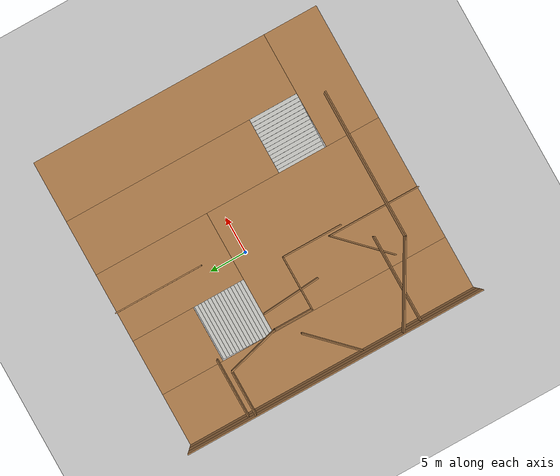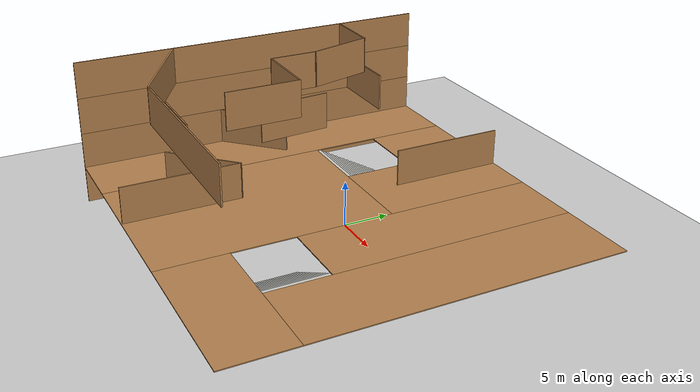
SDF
<sdf version="1.7">
 <world name="default">
  <model name="ground_plane">
   <static>1</static>
   <link name="link">
    <collision name="collision">
     <geometry><plane><normal>0 0 1</normal><size>100 100</size></plane></geometry>
     <surface>
      <contact><collide_bitmask>65535</collide_bitmask></contact>
      <friction><ode><mu>100</mu><mu2>50</mu2></ode></friction>
     </surface>
    </collision>
    <visual name="visual">
     <cast_shadows>0</cast_shadows>
     <geometry><plane><normal>0 0 1</normal><size>100 100</size></plane></geometry>
     <material>
      <script><uri>file://media/materials/scripts/gazebo.material</uri><name>Gazebo/Grey</name></script>
     </material>
    </visual>
   </link>
  </model>
  <model name="building_4F">
   <pose>2.42906 -2.56558 0 0 -0 0</pose>
   <link name="Floor_1">
    <pose>-1e-06 0 4 0 -0 0</pose>
    <visual name="Floor_1_Visual_0">
     <pose>-16.4507 0 0.05 0 -0 0</pose>
     <geometry><box><size>7.27973 40.15 0.1</size></box></geometry>
     <material>
      <script><uri>file://media/materials/scripts/gazebo.material</uri><name>Gazebo/Wood</name></script>
      <ambient>1 1 1 1</ambient>
     </material>
     <meta><layer>1</layer></meta>
    </visual>
    <collision name="Floor_1_Collision_0">
     <geometry><box><size>7.27973 40.15 0.1</size></box></geometry>
     <pose>-16.4507 0 0.05 0 -0 0</pose>
    </collision>
    <visual name="Floor_1_Visual_1">
     <pose>-4.31817 -7.86458 0.05 0 -0 0</pose>
     <geometry><box><size>16.9853 24.4208 0.1</size></box></geometry>
     <material>
      <script><uri>file://media/materials/scripts/gazebo.material</uri><name>Gazebo/Wood</name></script>
      <ambient>1 1 1 1</ambient>
     </material>
     <meta><layer>1</layer></meta>
    </visual>
    <collision name="Floor_1_Collision_1">
     <geometry><box><size>16.9853 24.4208 0.1</size></box></geometry>
     <pose>-4.31817 -7.86458 0.05 0 -0 0</pose>
    </collision>
    <visual name="Floor_1_Visual_2">
     <pose>12.1325 -16.3581 0.05 0 -0 0</pose>
     <geometry><box><size>15.9161 7.43388 0.1</size></box></geometry>
     <material>
      <script><uri>file://media/materials/scripts/gazebo.material</uri><name>Gazebo/Wood</name></script>
      <ambient>1 1 1 1</ambient>
     </material>
     <meta><layer>1</layer></meta>
    </visual>
    <collision name="Floor_1_Collision_2">
     <geometry><box><size>15.9161 7.43388 0.1</size></box></geometry>
     <pose>12.1325 -16.3581 0.05 0 -0 0</pose>
    </collision>
    <visual name="Floor_1_Visual_3">
     <pose>15.9125 3.71694 0.05 0 -0 0</pose>
     <geometry><box><size>8.35607 32.7161 0.1</size></box></geometry>
     <material>
      <script><uri>file://media/materials/scripts/gazebo.material</uri><name>Gazebo/Wood</name></script>
      <ambient>1 1 1 1</ambient>
     </material>
     <meta><layer>1</layer></meta>
    </visual>
    <collision name="Floor_1_Collision_3">
     <geometry><box><size>8.35607 32.7161 0.1</size></box></geometry>
     <pose>15.9125 3.71694 0.05 0 -0 0</pose>
    </collision>
    <visual name="Floor_1_Visual_4">
     <pose>7.95446 7.07694 0.05 0 -0 0</pose>
     <geometry><box><size>7.56 25.9961 0.1</size></box></geometry>
     <material>
      <script><uri>file://media/materials/scripts/gazebo.material</uri><name>Gazebo/Wood</name></script>
      <ambient>1 1 1 1</ambient>
     </material>
     <meta><layer>1</layer></meta>
    </visual>
    <collision name="Floor_1_Collision_4">
     <geometry><box><size>7.56 25.9961 0.1</size></box></geometry>
     <pose>7.95446 7.07694 0.05 0 -0 0</pose>
    </collision>
    <visual name="Floor_1_Visual_5">
     <pose>-0.523168 12.2104 0.05 0 -0 0</pose>
     <geometry><box><size>9.39526 15.7292 0.1</size></box></geometry>
     <material>
      <script><uri>file://media/materials/scripts/gazebo.material</uri><name>Gazebo/Wood</name></script>
      <ambient>1 1 1 1</ambient>
     </material>
     <meta><layer>1</layer></meta>
    </visual>
    <collision name="Floor_1_Collision_5">
     <geometry><box><size>9.39526 15.7292 0.1</size></box></geometry>
     <pose>-0.523168 12.2104 0.05 0 -0 0</pose>
    </collision>
    <visual name="Floor_1_Visual_6">
     <pose>-9.0158 15.7804 0.05 0 -0 0</pose>
     <geometry><box><size>7.59 8.58916 0.1</size></box></geometry>
     <material>
      <script><uri>file://media/materials/scripts/gazebo.material</uri><name>Gazebo/Wood</name></script>
      <ambient>1 1 1 1</ambient>
     </material>
     <meta><layer>1</layer></meta>
    </visual>
    <collision name="Floor_1_Collision_6">
     <geometry><box><size>7.59 8.58916 0.1</size></box></geometry>
     <pose>-9.0158 15.7804 0.05 0 -0 0</pose>
    </collision>
   </link>
   <link name="Stairs_0">
    <visual name="Stairs_0_Visual_0">
     <pose>-9.0158 11.2478 0.133333 0 -0 0</pose>
     <geometry><box><size>7.59 0.476 0.266667</size></box></geometry>
     <material>
      <script><uri>file://media/materials/scripts/gazebo.material</uri><name>Gazebo/CeilingTiled</name></script>
      <ambient>1 1 1 1</ambient>
     </material>
     <meta><layer>0</layer></meta>
    </visual>
    <collision name="Stairs_0_Collision_0">
     <geometry><box><size>7.59 0.476 0.266667</size></box></geometry>
     <pose>-9.0158 11.2478 0.133333 0 -0 0</pose>
    </collision>
    <visual name="Stairs_0_Visual_1">
     <pose>-9.0158 10.7718 0.4 0 -0 0</pose>
     <geometry><box><size>7.59 0.476 0.266667</size></box></geometry>
     <material>
      <script><uri>file://media/materials/scripts/gazebo.material</uri><name>Gazebo/CeilingTiled</name></script>
      <ambient>1 1 1 1</ambient>
     </material>
     <meta><layer>0</layer></meta>
    </visual>
    <collision name="Stairs_0_Collision_1">
     <geometry><box><size>7.59 0.476 0.266667</size></box></geometry>
     <pose>-9.0158 10.7718 0.4 0 -0 0</pose>
    </collision>
    <visual name="Stairs_0_Visual_2">
     <pose>-9.0158 10.2958 0.666667 0 -0 0</pose>
     <geometry><box><size>7.59 0.476 0.266667</size></box></geometry>
     <material>
      <script><uri>file://media/materials/scripts/gazebo.material</uri><name>Gazebo/CeilingTiled</name></script>
      <ambient>1 1 1 1</ambient>
     </material>
     <meta><layer>0</layer></meta>
    </visual>
    <collision name="Stairs_0_Collision_2">
     <geometry><box><size>7.59 0.476 0.266667</size></box></geometry>
     <pose>-9.0158 10.2958 0.666667 0 -0 0</pose>
    </collision>
    <visual name="Stairs_0_Visual_3">
     <pose>-9.0158 9.81984 0.933333 0 -0 0</pose>
     <geometry><box><size>7.59 0.476 0.266667</size></box></geometry>
     <material>
      <script><uri>file://media/materials/scripts/gazebo.material</uri><name>Gazebo/CeilingTiled</name></script>
      <ambient>1 1 1 1</ambient>
     </material>
     <meta><layer>0</layer></meta>
    </visual>
    <collision name="Stairs_0_Collision_3">
     <geometry><box><size>7.59 0.476 0.266667</size></box></geometry>
     <pose>-9.0158 9.81984 0.933333 0 -0 0</pose>
    </collision>
    <visual name="Stairs_0_Visual_4">
     <pose>-9.0158 9.34384 1.2 0 -0 0</pose>
     <geometry><box><size>7.59 0.476 0.266667</size></box></geometry>
     <material>
      <script><uri>file://media/materials/scripts/gazebo.material</uri><name>Gazebo/CeilingTiled</name></script>
      <ambient>1 1 1 1</ambient>
     </material>
     <meta><layer>0</layer></meta>
    </visual>
    <collision name="Stairs_0_Collision_4">
     <geometry><box><size>7.59 0.476 0.266667</size></box></geometry>
     <pose>-9.0158 9.34384 1.2 0 -0 0</pose>
    </collision>
    <visual name="Stairs_0_Visual_5">
     <pose>-9.0158 8.86784 1.46667 0 -0 0</pose>
     <geometry><box><size>7.59 0.476 0.266667</size></box></geometry>
     <material>
      <script><uri>file://media/materials/scripts/gazebo.material</uri><name>Gazebo/CeilingTiled</name></script>
      <ambient>1 1 1 1</ambient>
     </material>
     <meta><layer>0</layer></meta>
    </visual>
    <collision name="Stairs_0_Collision_5">
     <geometry><box><size>7.59 0.476 0.266667</size></box></geometry>
     <pose>-9.0158 8.86784 1.46667 0 -0 0</pose>
    </collision>
    <visual name="Stairs_0_Visual_6">
     <pose>-9.0158 8.39184 1.73333 0 -0 0</pose>
     <geometry><box><size>7.59 0.476 0.266667</size></box></geometry>
     <material>
      <script><uri>file://media/materials/scripts/gazebo.material</uri><name>Gazebo/CeilingTiled</name></script>
      <ambient>1 1 1 1</ambient>
     </material>
     <meta><layer>0</layer></meta>
    </visual>
    <collision name="Stairs_0_Collision_6">
     <geometry><box><size>7.59 0.476 0.266667</size></box></geometry>
     <pose>-9.0158 8.39184 1.73333 0 -0 0</pose>
    </collision>
    <visual name="Stairs_0_Visual_7">
     <pose>-9.0158 7.91584 2 0 -0 0</pose>
     <geometry><box><size>7.59 0.476 0.266667</size></box></geometry>
     <material>
      <script><uri>file://media/materials/scripts/gazebo.material</uri><name>Gazebo/CeilingTiled</name></script>
      <ambient>1 1 1 1</ambient>
     </material>
     <meta><layer>0</layer></meta>
    </visual>
    <collision name="Stairs_0_Collision_7">
     <geometry><box><size>7.59 0.476 0.266667</size></box></geometry>
     <pose>-9.0158 7.91584 2 0 -0 0</pose>
    </collision>
    <visual name="Stairs_0_Visual_8">
     <pose>-9.0158 7.43984 2.26667 0 -0 0</pose>
     <geometry><box><size>7.59 0.476 0.266667</size></box></geometry>
     <material>
      <script><uri>file://media/materials/scripts/gazebo.material</uri><name>Gazebo/CeilingTiled</name></script>
      <ambient>1 1 1 1</ambient>
     </material>
     <meta><layer>0</layer></meta>
    </visual>
    <collision name="Stairs_0_Collision_8">
     <geometry><box><size>7.59 0.476 0.266667</size></box></geometry>
     <pose>-9.0158 7.43984 2.26667 0 -0 0</pose>
    </collision>
    <visual name="Stairs_0_Visual_9">
     <pose>-9.0158 6.96384 2.53333 0 -0 0</pose>
     <geometry><box><size>7.59 0.476 0.266667</size></box></geometry>
     <material>
      <script><uri>file://media/materials/scripts/gazebo.material</uri><name>Gazebo/CeilingTiled</name></script>
      <ambient>1 1 1 1</ambient>
     </material>
     <meta><layer>0</layer></meta>
    </visual>
    <collision name="Stairs_0_Collision_9">
     <geometry><box><size>7.59 0.476 0.266667</size></box></geometry>
     <pose>-9.0158 6.96384 2.53333 0 -0 0</pose>
    </collision>
    <visual name="Stairs_0_Visual_10">
     <pose>-9.0158 6.48784 2.8 0 -0 0</pose>
     <geometry><box><size>7.59 0.476 0.266667</size></box></geometry>
     <material>
      <script><uri>file://media/materials/scripts/gazebo.material</uri><name>Gazebo/CeilingTiled</name></script>
      <ambient>1 1 1 1</ambient>
     </material>
     <meta><layer>0</layer></meta>
    </visual>
    <collision name="Stairs_0_Collision_10">
     <geometry><box><size>7.59 0.476 0.266667</size></box></geometry>
     <pose>-9.0158 6.48784 2.8 0 -0 0</pose>
    </collision>
    <visual name="Stairs_0_Visual_11">
     <pose>-9.0158 6.01184 3.06667 0 -0 0</pose>
     <geometry><box><size>7.59 0.476 0.266667</size></box></geometry>
     <material>
      <script><uri>file://media/materials/scripts/gazebo.material</uri><name>Gazebo/CeilingTiled</name></script>
      <ambient>1 1 1 1</ambient>
     </material>
     <meta><layer>0</layer></meta>
    </visual>
    <collision name="Stairs_0_Collision_11">
     <geometry><box><size>7.59 0.476 0.266667</size></box></geometry>
     <pose>-9.0158 6.01184 3.06667 0 -0 0</pose>
    </collision>
    <visual name="Stairs_0_Visual_12">
     <pose>-9.0158 5.53584 3.33333 0 -0 0</pose>
     <geometry><box><size>7.59 0.476 0.266667</size></box></geometry>
     <material>
      <script><uri>file://media/materials/scripts/gazebo.material</uri><name>Gazebo/CeilingTiled</name></script>
      <ambient>1 1 1 1</ambient>
     </material>
     <meta><layer>0</layer></meta>
    </visual>
    <collision name="Stairs_0_Collision_12">
     <geometry><box><size>7.59 0.476 0.266667</size></box></geometry>
     <pose>-9.0158 5.53584 3.33333 0 -0 0</pose>
    </collision>
    <visual name="Stairs_0_Visual_13">
     <pose>-9.0158 5.05984 3.6 0 -0 0</pose>
     <geometry><box><size>7.59 0.476 0.266667</size></box></geometry>
     <material>
      <script><uri>file://media/materials/scripts/gazebo.material</uri><name>Gazebo/CeilingTiled</name></script>
      <ambient>1 1 1 1</ambient>
     </material>
     <meta><layer>0</layer></meta>
    </visual>
    <collision name="Stairs_0_Collision_13">
     <geometry><box><size>7.59 0.476 0.266667</size></box></geometry>
     <pose>-9.0158 5.05984 3.6 0 -0 0</pose>
    </collision>
    <visual name="Stairs_0_Visual_14">
     <pose>-9.0158 4.58384 3.86667 0 -0 0</pose>
     <geometry><box><size>7.59 0.476 0.266667</size></box></geometry>
     <material>
      <script><uri>file://media/materials/scripts/gazebo.material</uri><name>Gazebo/CeilingTiled</name></script>
      <ambient>1 1 1 1</ambient>
     </material>
     <meta><layer>0</layer></meta>
    </visual>
    <collision name="Stairs_0_Collision_14">
     <geometry><box><size>7.59 0.476 0.266667</size></box></geometry>
     <pose>-9.0158 4.58384 3.86667 0 -0 0</pose>
    </collision>
   </link>
   <link name="Stairs_1">
    <visual name="Stairs_1_Visual_0">
     <pose>4.42646 -9.28112 0.133333 0 -0 1.5708</pose>
     <geometry><box><size>6.72 0.504 0.266667</size></box></geometry>
     <material>
      <script><uri>file://media/materials/scripts/gazebo.material</uri><name>Gazebo/CeilingTiled</name></script>
      <ambient>1 1 1 1</ambient>
     </material>
     <meta><layer>0</layer></meta>
    </visual>
    <collision name="Stairs_1_Collision_0">
     <geometry><box><size>6.72 0.504 0.266667</size></box></geometry>
     <pose>4.42646 -9.28112 0.133333 0 -0 1.5708</pose>
    </collision>
    <visual name="Stairs_1_Visual_1">
     <pose>4.93046 -9.28112 0.4 0 -0 1.5708</pose>
     <geometry><box><size>6.72 0.504 0.266667</size></box></geometry>
     <material>
      <script><uri>file://media/materials/scripts/gazebo.material</uri><name>Gazebo/CeilingTiled</name></script>
      <ambient>1 1 1 1</ambient>
     </material>
     <meta><layer>0</layer></meta>
    </visual>
    <collision name="Stairs_1_Collision_1">
     <geometry><box><size>6.72 0.504 0.266667</size></box></geometry>
     <pose>4.93046 -9.28112 0.4 0 -0 1.5708</pose>
    </collision>
    <visual name="Stairs_1_Visual_2">
     <pose>5.43446 -9.28112 0.666667 0 -0 1.5708</pose>
     <geometry><box><size>6.72 0.504 0.266667</size></box></geometry>
     <material>
      <script><uri>file://media/materials/scripts/gazebo.material</uri><name>Gazebo/CeilingTiled</name></script>
      <ambient>1 1 1 1</ambient>
     </material>
     <meta><layer>0</layer></meta>
    </visual>
    <collision name="Stairs_1_Collision_2">
     <geometry><box><size>6.72 0.504 0.266667</size></box></geometry>
     <pose>5.43446 -9.28112 0.666667 0 -0 1.5708</pose>
    </collision>
    <visual name="Stairs_1_Visual_3">
     <pose>5.93846 -9.28112 0.933333 0 -0 1.5708</pose>
     <geometry><box><size>6.72 0.504 0.266667</size></box></geometry>
     <material>
      <script><uri>file://media/materials/scripts/gazebo.material</uri><name>Gazebo/CeilingTiled</name></script>
      <ambient>1 1 1 1</ambient>
     </material>
     <meta><layer>0</layer></meta>
    </visual>
    <collision name="Stairs_1_Collision_3">
     <geometry><box><size>6.72 0.504 0.266667</size></box></geometry>
     <pose>5.93846 -9.28112 0.933333 0 -0 1.5708</pose>
    </collision>
    <visual name="Stairs_1_Visual_4">
     <pose>6.44246 -9.28112 1.2 0 -0 1.5708</pose>
     <geometry><box><size>6.72 0.504 0.266667</size></box></geometry>
     <material>
      <script><uri>file://media/materials/scripts/gazebo.material</uri><name>Gazebo/CeilingTiled</name></script>
      <ambient>1 1 1 1</ambient>
     </material>
     <meta><layer>0</layer></meta>
    </visual>
    <collision name="Stairs_1_Collision_4">
     <geometry><box><size>6.72 0.504 0.266667</size></box></geometry>
     <pose>6.44246 -9.28112 1.2 0 -0 1.5708</pose>
    </collision>
    <visual name="Stairs_1_Visual_5">
     <pose>6.94646 -9.28112 1.46667 0 -0 1.5708</pose>
     <geometry><box><size>6.72 0.504 0.266667</size></box></geometry>
     <material>
      <script><uri>file://media/materials/scripts/gazebo.material</uri><name>Gazebo/CeilingTiled</name></script>
      <ambient>1 1 1 1</ambient>
     </material>
     <meta><layer>0</layer></meta>
    </visual>
    <collision name="Stairs_1_Collision_5">
     <geometry><box><size>6.72 0.504 0.266667</size></box></geometry>
     <pose>6.94646 -9.28112 1.46667 0 -0 1.5708</pose>
    </collision>
    <visual name="Stairs_1_Visual_6">
     <pose>7.45046 -9.28112 1.73333 0 -0 1.5708</pose>
     <geometry><box><size>6.72 0.504 0.266667</size></box></geometry>
     <material>
      <script><uri>file://media/materials/scripts/gazebo.material</uri><name>Gazebo/CeilingTiled</name></script>
      <ambient>1 1 1 1</ambient>
     </material>
     <meta><layer>0</layer></meta>
    </visual>
    <collision name="Stairs_1_Collision_6">
     <geometry><box><size>6.72 0.504 0.266667</size></box></geometry>
     <pose>7.45046 -9.28112 1.73333 0 -0 1.5708</pose>
    </collision>
    <visual name="Stairs_1_Visual_7">
     <pose>7.95446 -9.28112 2 0 -0 1.5708</pose>
     <geometry><box><size>6.72 0.504 0.266667</size></box></geometry>
     <material>
      <script><uri>file://media/materials/scripts/gazebo.material</uri><name>Gazebo/CeilingTiled</name></script>
      <ambient>1 1 1 1</ambient>
     </material>
     <meta><layer>0</layer></meta>
    </visual>
    <collision name="Stairs_1_Collision_7">
     <geometry><box><size>6.72 0.504 0.266667</size></box></geometry>
     <pose>7.95446 -9.28112 2 0 -0 1.5708</pose>
    </collision>
    <visual name="Stairs_1_Visual_8">
     <pose>8.45846 -9.28112 2.26667 0 -0 1.5708</pose>
     <geometry><box><size>6.72 0.504 0.266667</size></box></geometry>
     <material>
      <script><uri>file://media/materials/scripts/gazebo.material</uri><name>Gazebo/CeilingTiled</name></script>
      <ambient>1 1 1 1</ambient>
     </material>
     <meta><layer>0</layer></meta>
    </visual>
    <collision name="Stairs_1_Collision_8">
     <geometry><box><size>6.72 0.504 0.266667</size></box></geometry>
     <pose>8.45846 -9.28112 2.26667 0 -0 1.5708</pose>
    </collision>
    <visual name="Stairs_1_Visual_9">
     <pose>8.96246 -9.28112 2.53333 0 -0 1.5708</pose>
     <geometry><box><size>6.72 0.504 0.266667</size></box></geometry>
     <material>
      <script><uri>file://media/materials/scripts/gazebo.material</uri><name>Gazebo/CeilingTiled</name></script>
      <ambient>1 1 1 1</ambient>
     </material>
     <meta><layer>0</layer></meta>
    </visual>
    <collision name="Stairs_1_Collision_9">
     <geometry><box><size>6.72 0.504 0.266667</size></box></geometry>
     <pose>8.96246 -9.28112 2.53333 0 -0 1.5708</pose>
    </collision>
    <visual name="Stairs_1_Visual_10">
     <pose>9.46646 -9.28112 2.8 0 -0 1.5708</pose>
     <geometry><box><size>6.72 0.504 0.266667</size></box></geometry>
     <material>
      <script><uri>file://media/materials/scripts/gazebo.material</uri><name>Gazebo/CeilingTiled</name></script>
      <ambient>1 1 1 1</ambient>
     </material>
     <meta><layer>0</layer></meta>
    </visual>
    <collision name="Stairs_1_Collision_10">
     <geometry><box><size>6.72 0.504 0.266667</size></box></geometry>
     <pose>9.46646 -9.28112 2.8 0 -0 1.5708</pose>
    </collision>
    <visual name="Stairs_1_Visual_11">
     <pose>9.97046 -9.28112 3.06667 0 -0 1.5708</pose>
     <geometry><box><size>6.72 0.504 0.266667</size></box></geometry>
     <material>
      <script><uri>file://media/materials/scripts/gazebo.material</uri><name>Gazebo/CeilingTiled</name></script>
      <ambient>1 1 1 1</ambient>
     </material>
     <meta><layer>0</layer></meta>
    </visual>
    <collision name="Stairs_1_Collision_11">
     <geometry><box><size>6.72 0.504 0.266667</size></box></geometry>
     <pose>9.97046 -9.28112 3.06667 0 -0 1.5708</pose>
    </collision>
    <visual name="Stairs_1_Visual_12">
     <pose>10.4745 -9.28112 3.33333 0 -0 1.5708</pose>
     <geometry><box><size>6.72 0.504 0.266667</size></box></geometry>
     <material>
      <script><uri>file://media/materials/scripts/gazebo.material</uri><name>Gazebo/CeilingTiled</name></script>
      <ambient>1 1 1 1</ambient>
     </material>
     <meta><layer>0</layer></meta>
    </visual>
    <collision name="Stairs_1_Collision_12">
     <geometry><box><size>6.72 0.504 0.266667</size></box></geometry>
     <pose>10.4745 -9.28112 3.33333 0 -0 1.5708</pose>
    </collision>
    <visual name="Stairs_1_Visual_13">
     <pose>10.9785 -9.28112 3.6 0 -0 1.5708</pose>
     <geometry><box><size>6.72 0.504 0.266667</size></box></geometry>
     <material>
      <script><uri>file://media/materials/scripts/gazebo.material</uri><name>Gazebo/CeilingTiled</name></script>
      <ambient>1 1 1 1</ambient>
     </material>
     <meta><layer>0</layer></meta>
    </visual>
    <collision name="Stairs_1_Collision_13">
     <geometry><box><size>6.72 0.504 0.266667</size></box></geometry>
     <pose>10.9785 -9.28112 3.6 0 -0 1.5708</pose>
    </collision>
    <visual name="Stairs_1_Visual_14">
     <pose>11.4825 -9.28112 3.86667 0 -0 1.5708</pose>
     <geometry><box><size>6.72 0.504 0.266667</size></box></geometry>
     <material>
      <script><uri>file://media/materials/scripts/gazebo.material</uri><name>Gazebo/CeilingTiled</name></script>
      <ambient>1 1 1 1</ambient>
     </material>
     <meta><layer>0</layer></meta>
    </visual>
    <collision name="Stairs_1_Collision_14">
     <geometry><box><size>6.72 0.504 0.266667</size></box></geometry>
     <pose>11.4825 -9.28112 3.86667 0 -0 1.5708</pose>
    </collision>
   </link>
   <link name="Wall_0">
    <collision name="Wall_0_Collision">
     <geometry><box><size>40.15 0.15 4</size></box></geometry>
     <pose>0 0 2 0 -0 0</pose>
    </collision>
    <visual name="Wall_0_Visual">
     <pose>0 0 2 0 -0 0</pose>
     <geometry><box><size>40.15 0.15 4</size></box></geometry>
     <material>
      <script><uri>file://media/materials/scripts/gazebo.material</uri><name>Gazebo/Wood</name></script>
      <ambient>1 1 1 1</ambient>
     </material>
     <meta><layer>0</layer></meta>
    </visual>
    <pose>-19.9845 0 0 0 -0 1.5708</pose>
   </link>
   <link name="Wall_14">
    <collision name="Wall_14_Collision">
     <geometry><box><size>13.25 0.15 4</size></box></geometry>
     <pose>0 0 2 0 -0 0</pose>
    </collision>
    <visual name="Wall_14_Visual">
     <pose>0 0 2 0 -0 0</pose>
     <geometry><box><size>13.25 0.15 4</size></box></geometry>
     <material>
      <script><uri>file://media/materials/scripts/gazebo.material</uri><name>Gazebo/Wood</name></script>
      <ambient>1 1 1 1</ambient>
     </material>
     <meta><layer>0</layer></meta>
    </visual>
    <pose>-13.4125 -2.705 0 0 -0 0</pose>
   </link>
   <link name="Wall_25">
    <collision name="Wall_25_Collision">
     <geometry><box><size>40.15 0.15 4</size></box></geometry>
     <pose>0 0 2 0 -0 0</pose>
    </collision>
    <visual name="Wall_25_Visual">
     <pose>0 0 2 0 -0 0</pose>
     <geometry><box><size>40.15 0.15 4</size></box></geometry>
     <material>
      <script><uri>file://media/materials/scripts/gazebo.material</uri><name>Gazebo/Wood</name></script>
      <ambient>1 1 1 1</ambient>
     </material>
     <meta><layer>1</layer></meta>
    </visual>
    <pose>-19.9845 0 4 0 -0 1.5708</pose>
   </link>
   <link name="Wall_34">
    <collision name="Wall_34_Collision">
     <geometry><box><size>12 0.15 4</size></box></geometry>
     <pose>0 0 2 0 -0 0</pose>
    </collision>
    <visual name="Wall_34_Visual">
     <pose>0 0 2 0 -0 0</pose>
     <geometry><box><size>12 0.15 4</size></box></geometry>
     <material>
      <script><uri>file://media/materials/scripts/gazebo.material</uri><name>Gazebo/Wood</name></script>
      <ambient>1 1 1 1</ambient>
     </material>
     <meta><layer>1</layer></meta>
    </visual>
    <pose>-1.16147 14.008 4 0 -0 -1.5708</pose>
   </link>
   <link name="Wall_37">
    <collision name="Wall_37_Collision">
     <geometry><box><size>12.5 0.15 4</size></box></geometry>
     <pose>0 0 2 0 -0 0</pose>
    </collision>
    <visual name="Wall_37_Visual">
     <pose>0 0 2 0 -0 0</pose>
     <geometry><box><size>12.5 0.15 4</size></box></geometry>
     <material>
      <script><uri>file://media/materials/scripts/gazebo.material</uri><name>Gazebo/Wood</name></script>
      <ambient>1 1 1 1</ambient>
     </material>
     <meta><layer>1</layer></meta>
    </visual>
    <pose>-5.66447 -13.714 4 0 -0 1.5708</pose>
   </link>
   <link name="Wall_38">
    <collision name="Wall_38_Collision">
     <geometry><box><size>8.5 0.15 4</size></box></geometry>
     <pose>0 0 2 0 -0 0</pose>
    </collision>
    <visual name="Wall_38_Visual">
     <pose>0 0 2 0 -0 0</pose>
     <geometry><box><size>8.5 0.15 4</size></box></geometry>
     <material>
      <script><uri>file://media/materials/scripts/gazebo.material</uri><name>Gazebo/Wood</name></script>
      <ambient>1 1 1 1</ambient>
     </material>
     <meta><layer>1</layer></meta>
    </visual>
    <pose>-8.61647 -10.491 4 0 -0 -2.35619</pose>
   </link>
   <link name="Wall_40">
    <collision name="Wall_40_Collision">
     <geometry><box><size>7.97683 0.15 4</size></box></geometry>
     <pose>0 0 2 0 -0 0</pose>
    </collision>
    <visual name="Wall_40_Visual">
     <pose>0 0 2 0 -0 0</pose>
     <geometry><box><size>7.97683 0.15 4</size></box></geometry>
     <material>
      <script><uri>file://media/materials/scripts/gazebo.material</uri><name>Gazebo/Wood</name></script>
      <ambient>1 1 1 1</ambient>
     </material>
     <meta><layer>1</layer></meta>
    </visual>
    <pose>-17.2255 -1.4945 4 0 -0 0.788379</pose>
   </link>
   <link name="Wall_44">
    <collision name="Wall_44_Collision">
     <geometry><box><size>40.15 0.15 4</size></box></geometry>
     <pose>0 0 2 0 -0 0</pose>
    </collision>
    <visual name="Wall_44_Visual">
     <pose>0 0 2 0 -0 0</pose>
     <geometry><box><size>40.15 0.15 4</size></box></geometry>
     <material>
      <script><uri>file://media/materials/scripts/gazebo.material</uri><name>Gazebo/Wood</name></script>
      <ambient>1 1 1 1</ambient>
     </material>
     <meta><layer>2</layer></meta>
    </visual>
    <pose>-19.9845 0 8 0 -0 1.5708</pose>
   </link>
   <link name="Wall_54">
    <collision name="Wall_54_Collision">
     <geometry><box><size>7.8395 0.15 4</size></box></geometry>
     <pose>0 0 2 0 -0 0</pose>
    </collision>
    <visual name="Wall_54_Visual">
     <pose>0 0 2 0 -0 0</pose>
     <geometry><box><size>7.8395 0.15 4</size></box></geometry>
     <material>
      <script><uri>file://media/materials/scripts/gazebo.material</uri><name>Gazebo/Wood</name></script>
      <ambient>1 1 1 1</ambient>
     </material>
     <meta><layer>2</layer></meta>
    </visual>
    <pose>-9.67447 0.214 8 0 -0 -1.49007</pose>
   </link>
   <link name="Wall_57">
    <collision name="Wall_57_Collision">
     <geometry><box><size>11.75 0.15 4</size></box></geometry>
     <pose>0 0 2 0 -0 0</pose>
    </collision>
    <visual name="Wall_57_Visual">
     <pose>0 0 2 0 -0 0</pose>
     <geometry><box><size>11.75 0.15 4</size></box></geometry>
     <material>
      <script><uri>file://media/materials/scripts/gazebo.material</uri><name>Gazebo/Wood</name></script>
      <ambient>1 1 1 1</ambient>
     </material>
     <meta><layer>2</layer></meta>
    </visual>
    <pose>-14.1075 -12.045 8 0 -0 0</pose>
   </link>
   <link name="Wall_59">
    <collision name="Wall_59_Collision">
     <geometry><box><size>8 0.15 4</size></box></geometry>
     <pose>0 0 2 0 -0 0</pose>
    </collision>
    <visual name="Wall_59_Visual">
     <pose>0 0 2 0 -0 0</pose>
     <geometry><box><size>8 0.15 4</size></box></geometry>
     <material>
      <script><uri>file://media/materials/scripts/gazebo.material</uri><name>Gazebo/Wood</name></script>
      <ambient>1 1 1 1</ambient>
     </material>
     <meta><layer>2</layer></meta>
    </visual>
    <pose>-16.0435 11.816 8 0 -0 0</pose>
   </link>
   <link name="Wall_6">
    <collision name="Wall_6_Collision">
     <geometry><box><size>3.75 0.15 4</size></box></geometry>
     <pose>0 0 2 0 -0 0</pose>
    </collision>
    <visual name="Wall_6_Visual">
     <pose>0 0 2 0 -0 0</pose>
     <geometry><box><size>3.75 0.15 4</size></box></geometry>
     <material>
      <script><uri>file://media/materials/scripts/gazebo.material</uri><name>Gazebo/Wood</name></script>
      <ambient>1 1 1 1</ambient>
     </material>
     <meta><layer>0</layer></meta>
    </visual>
    <pose>-13.6215 -11.489 0 0 -0 -1.5708</pose>
   </link>
   <link name="Wall_63">
    <collision name="Wall_63_Collision">
     <geometry><box><size>40.15 0.15 4</size></box></geometry>
     <pose>0 0 2 0 -0 0</pose>
    </collision>
    <visual name="Wall_63_Visual">
     <pose>0 0 2 0 -0 0</pose>
     <geometry><box><size>40.15 0.15 4</size></box></geometry>
     <material>
      <script><uri>file://media/materials/scripts/gazebo.material</uri><name>Gazebo/Wood</name></script>
      <ambient>1 1 1 1</ambient>
     </material>
     <meta><layer>3</layer></meta>
    </visual>
    <pose>-19.9845 0 12 0 -0 1.5708</pose>
   </link>
   <link name="Wall_7">
    <collision name="Wall_7_Collision">
     <geometry><box><size>6.75 0.15 4</size></box></geometry>
     <pose>0 0 2 0 -0 0</pose>
    </collision>
    <visual name="Wall_7_Visual">
     <pose>0 0 2 0 -0 0</pose>
     <geometry><box><size>6.75 0.15 4</size></box></geometry>
     <material>
      <script><uri>file://media/materials/scripts/gazebo.material</uri><name>Gazebo/Wood</name></script>
      <ambient>1 1 1 1</ambient>
     </material>
     <meta><layer>0</layer></meta>
    </visual>
    <pose>-10.3215 -13.289 0 0 -0 0</pose>
   </link>
   <link name="Wall_72">
    <collision name="Wall_72_Collision">
     <geometry><box><size>6 0.15 4</size></box></geometry>
     <pose>0 0 2 0 -0 0</pose>
    </collision>
    <visual name="Wall_72_Visual">
     <pose>0 0 2 0 -0 0</pose>
     <geometry><box><size>6 0.15 4</size></box></geometry>
     <material>
      <script><uri>file://media/materials/scripts/gazebo.material</uri><name>Gazebo/Wood</name></script>
      <ambient>1 1 1 1</ambient>
     </material>
     <meta><layer>3</layer></meta>
    </visual>
    <pose>-16.9025 10.77 12 0 -0 0</pose>
   </link>
   <link name="Wall_73">
    <collision name="Wall_73_Collision">
     <geometry><box><size>7.25035 0.15 4</size></box></geometry>
     <pose>0 0 2 0 -0 0</pose>
    </collision>
    <visual name="Wall_73_Visual">
     <pose>0 0 2 0 -0 0</pose>
     <geometry><box><size>7.25035 0.15 4</size></box></geometry>
     <material>
      <script><uri>file://media/materials/scripts/gazebo.material</uri><name>Gazebo/Wood</name></script>
      <ambient>1 1 1 1</ambient>
     </material>
     <meta><layer>3</layer></meta>
    </visual>
    <pose>-13.0585 7.341 12 0 -0 -1.30894</pose>
   </link>
   <link name="Wall_74">
    <collision name="Wall_74_Collision">
     <geometry><box><size>5.25 0.15 4</size></box></geometry>
     <pose>0 0 2 0 -0 0</pose>
    </collision>
    <visual name="Wall_74_Visual">
     <pose>0 0 2 0 -0 0</pose>
     <geometry><box><size>5.25 0.15 4</size></box></geometry>
     <material>
      <script><uri>file://media/materials/scripts/gazebo.material</uri><name>Gazebo/Wood</name></script>
      <ambient>1 1 1 1</ambient>
     </material>
     <meta><layer>3</layer></meta>
    </visual>
    <pose>-12.1395 1.362 12 0 -0 -1.5708</pose>
   </link>
   <link name="Wall_75">
    <collision name="Wall_75_Collision">
     <geometry><box><size>7.25 0.15 4</size></box></geometry>
     <pose>0 0 2 0 -0 0</pose>
    </collision>
    <visual name="Wall_75_Visual">
     <pose>0 0 2 0 -0 0</pose>
     <geometry><box><size>7.25 0.15 4</size></box></geometry>
     <material>
      <script><uri>file://media/materials/scripts/gazebo.material</uri><name>Gazebo/Wood</name></script>
      <ambient>1 1 1 1</ambient>
     </material>
     <meta><layer>3</layer></meta>
    </visual>
    <pose>-8.58947 -1.188 12 0 -0 0</pose>
   </link>
   <link name="Wall_76">
    <collision name="Wall_76_Collision">
     <geometry><box><size>8 0.15 4</size></box></geometry>
     <pose>0 0 2 0 -0 0</pose>
    </collision>
    <visual name="Wall_76_Visual">
     <pose>0 0 2 0 -0 0</pose>
     <geometry><box><size>8 0.15 4</size></box></geometry>
     <material>
      <script><uri>file://media/materials/scripts/gazebo.material</uri><name>Gazebo/Wood</name></script>
      <ambient>1 1 1 1</ambient>
     </material>
     <meta><layer>3</layer></meta>
    </visual>
    <pose>-5.03947 -5.113 12 0 -0 -1.5708</pose>
   </link>
   <link name="Wall_84">
    <collision name="Wall_84_Collision">
     <geometry><box><size>11.75 0.15 4</size></box></geometry>
     <pose>0 0 2 0 -0 0</pose>
    </collision>
    <visual name="Wall_84_Visual">
     <pose>0 0 2 0 -0 0</pose>
     <geometry><box><size>11.75 0.15 4</size></box></geometry>
     <material>
      <script><uri>file://media/materials/scripts/gazebo.material</uri><name>Gazebo/Wood</name></script>
      <ambient>1 1 1 1</ambient>
     </material>
     <meta><layer>3</layer></meta>
    </visual>
    <pose>-14.9455 -12.253 12 0 -0 -0.523594</pose>
   </link>
   <link name="Wall_85">
    <collision name="Wall_85_Collision">
     <geometry><box><size>19.75 0.15 4</size></box></geometry>
     <pose>0 0 2 0 -0 0</pose>
    </collision>
    <visual name="Wall_85_Visual">
     <pose>0 0 2 0 -0 0</pose>
     <geometry><box><size>19.75 0.15 4</size></box></geometry>
     <material>
      <script><uri>file://media/materials/scripts/gazebo.material</uri><name>Gazebo/Wood</name></script>
      <ambient>1 1 1 1</ambient>
     </material>
     <meta><layer>3</layer></meta>
    </visual>
    <pose>-0.122468 -15.153 12 0 -0 0</pose>
   </link>
   <static>1</static>
  </model>
 </world>
</sdf>
